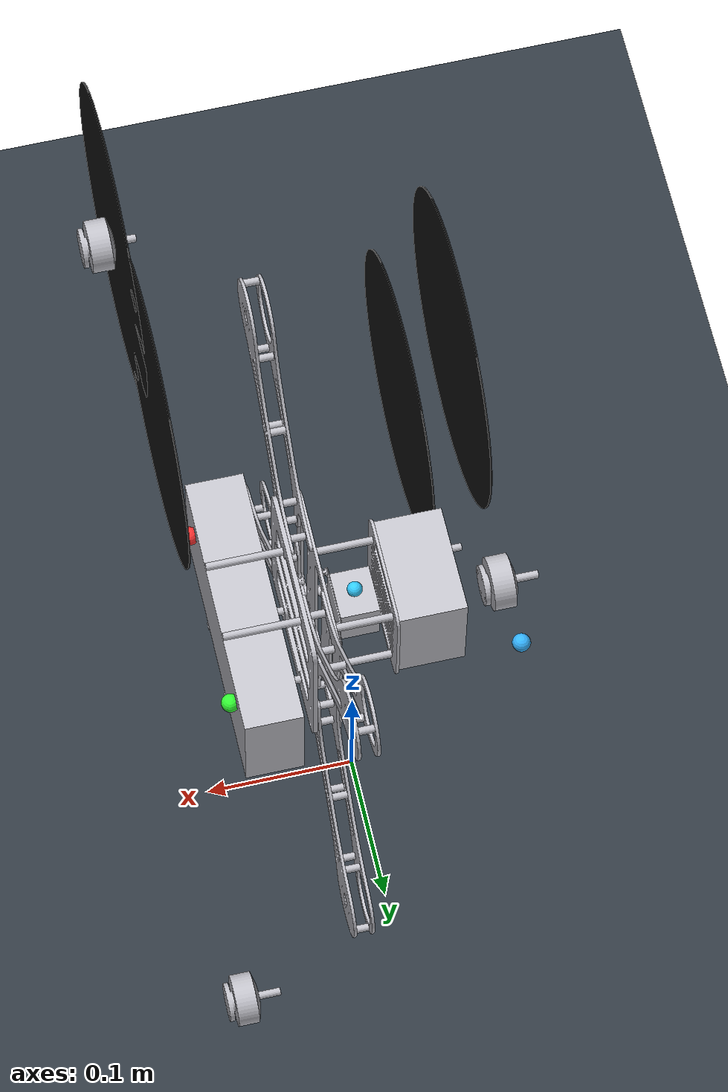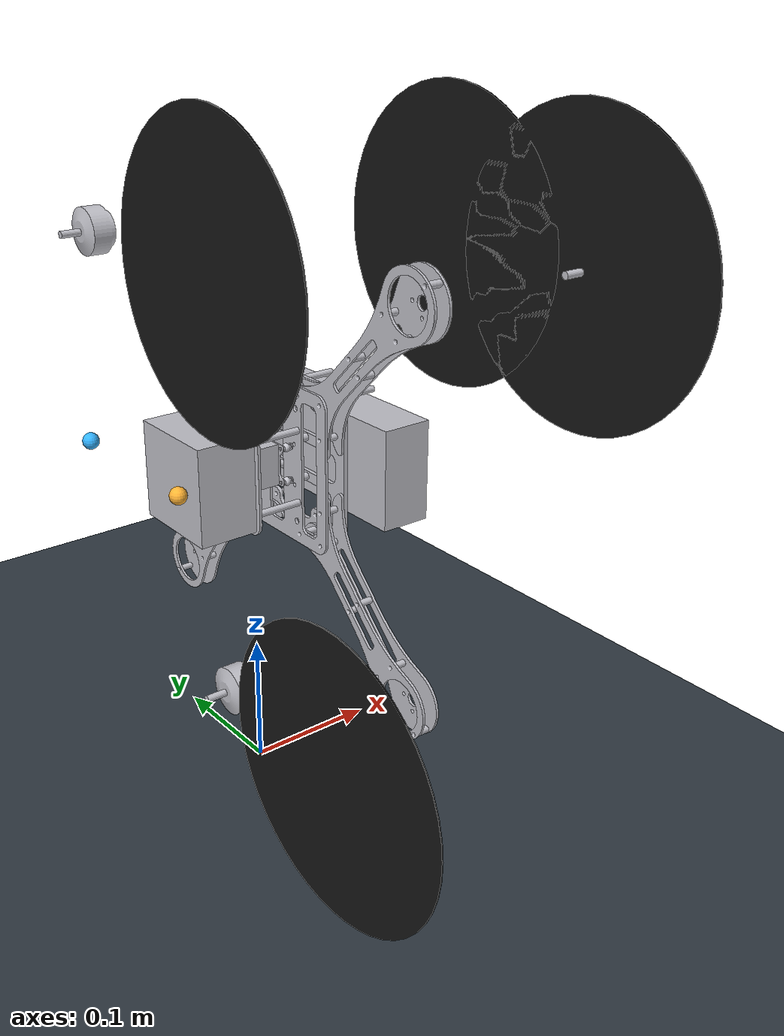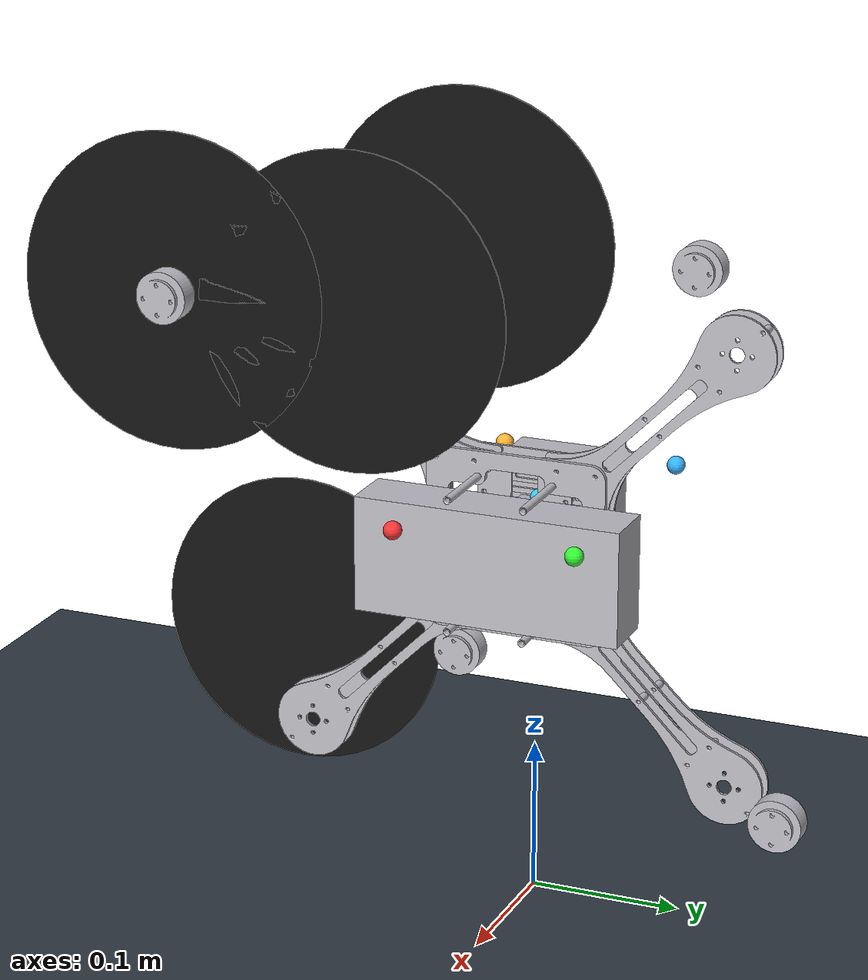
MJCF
<mujoco model="UAV_scene">
  <include file="UAV.xml"/>

  <statistic center="0 0 0.35" extent="2"/>

  <visual>
    <headlight ambient="0.25 0.25 0.25" diffuse="0.65 0.65 0.65" specular="0.2 0.2 0.2"/>
    <rgba haze="0.15 0.2 0.25 1"/>
    <quality shadowsize="4096"/>
  </visual>

  <asset>
    <texture name="grid" type="2d" builtin="checker" width="512" height="512"
      rgb1="0.24 0.28 0.32" rgb2="0.14 0.17 0.2"/>
    <material name="ground_mat" texture="grid" texrepeat="4 4" texuniform="true" reflectance="0.2"/>
  </asset>

  <worldbody>
    <light name="sun" directional="true" pos="0 0 4" dir="0 0 -1" diffuse="0.8 0.8 0.8" specular="0.15 0.15 0.15"/>
    <light name="fill" pos="1.5 -1.5 2.5" dir="-1 1 -2" diffuse="0.35 0.35 0.35"/>
    <camera name="overview" pos="1.6 -1.6 0.9" xyaxes="0.707 0.707 0 -0.235 0.235 0.943"/>

    <geom name="ground" type="plane" size="5 5 0.1" material="ground_mat" condim="3"
      contype="5" conaffinity="3"/>
  </worldbody>
</mujoco>

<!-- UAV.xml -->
<mujoco model="UAV">
  <compiler angle="degree" coordinate="local" meshdir="UAV" inertiafromgeom="auto"/>
  <option timestep="0.002" gravity="0 0 -9.81"/>

  <asset>
    <material name="uav_mat" rgba="0.75 0.75 0.78 1" specular="0.3" shininess="0.2"/>
    <material name="uav_prop_mat" rgba="0.08 0.08 0.08 1" specular="0.15" shininess="0.05"/>
    <mesh name="uav_11000mah_battery_1" file="UAV - 11000mAh_battery-1.STL" scale="1 1 1"/>
    <mesh name="uav_7nano_base_1" file="UAV - 7Nano_Base-1.STL" scale="1 1 1"/>
    <mesh name="uav_7nano_1" file="UAV - 7NANO-1.STL" scale="1 1 1"/>
    <mesh name="uav_cushion_pcb_1" file="UAV - Cushion_PCB-1.STL" scale="1 1 1"/>
    <mesh name="uav_cushion_pcb_2" file="UAV - Cushion_PCB-2.STL" scale="1 1 1"/>
    <mesh name="uav_cushion_pcb_3" file="UAV - Cushion_PCB-3.STL" scale="1 1 1"/>
    <mesh name="uav_cushion_pcb_4" file="UAV - Cushion_PCB-4.STL" scale="1 1 1"/>
    <mesh name="uav_d5l10alsupport_1" file="UAV - D5L10Alsupport-1.STL" scale="1 1 1"/>
    <mesh name="uav_d5l10alsupport_10" file="UAV - D5L10Alsupport-10.STL" scale="1 1 1"/>
    <mesh name="uav_d5l10alsupport_11" file="UAV - D5L10Alsupport-11.STL" scale="1 1 1"/>
    <mesh name="uav_d5l10alsupport_12" file="UAV - D5L10Alsupport-12.STL" scale="1 1 1"/>
    <mesh name="uav_d5l10alsupport_13" file="UAV - D5L10Alsupport-13.STL" scale="1 1 1"/>
    <mesh name="uav_d5l10alsupport_14" file="UAV - D5L10Alsupport-14.STL" scale="1 1 1"/>
    <mesh name="uav_d5l10alsupport_15" file="UAV - D5L10Alsupport-15.STL" scale="1 1 1"/>
    <mesh name="uav_d5l10alsupport_16" file="UAV - D5L10Alsupport-16.STL" scale="1 1 1"/>
    <mesh name="uav_d5l10alsupport_17" file="UAV - D5L10Alsupport-17.STL" scale="1 1 1"/>
    <mesh name="uav_d5l10alsupport_18" file="UAV - D5L10Alsupport-18.STL" scale="1 1 1"/>
    <mesh name="uav_d5l10alsupport_19" file="UAV - D5L10Alsupport-19.STL" scale="1 1 1"/>
    <mesh name="uav_d5l10alsupport_2" file="UAV - D5L10Alsupport-2.STL" scale="1 1 1"/>
    <mesh name="uav_d5l10alsupport_20" file="UAV - D5L10Alsupport-20.STL" scale="1 1 1"/>
    <mesh name="uav_d5l10alsupport_21" file="UAV - D5L10Alsupport-21.STL" scale="1 1 1"/>
    <mesh name="uav_d5l10alsupport_22" file="UAV - D5L10Alsupport-22.STL" scale="1 1 1"/>
    <mesh name="uav_d5l10alsupport_23" file="UAV - D5L10Alsupport-23.STL" scale="1 1 1"/>
    <mesh name="uav_d5l10alsupport_24" file="UAV - D5L10Alsupport-24.STL" scale="1 1 1"/>
    <mesh name="uav_d5l10alsupport_25" file="UAV - D5L10Alsupport-25.STL" scale="1 1 1"/>
    <mesh name="uav_d5l10alsupport_26" file="UAV - D5L10Alsupport-26.STL" scale="1 1 1"/>
    <mesh name="uav_d5l10alsupport_27" file="UAV - D5L10Alsupport-27.STL" scale="1 1 1"/>
    <mesh name="uav_d5l10alsupport_28" file="UAV - D5L10Alsupport-28.STL" scale="1 1 1"/>
    <mesh name="uav_d5l10alsupport_29" file="UAV - D5L10Alsupport-29.STL" scale="1 1 1"/>
    <mesh name="uav_d5l10alsupport_3" file="UAV - D5L10Alsupport-3.STL" scale="1 1 1"/>
    <mesh name="uav_d5l10alsupport_30" file="UAV - D5L10Alsupport-30.STL" scale="1 1 1"/>
    <mesh name="uav_d5l10alsupport_31" file="UAV - D5L10Alsupport-31.STL" scale="1 1 1"/>
    <mesh name="uav_d5l10alsupport_32" file="UAV - D5L10Alsupport-32.STL" scale="1 1 1"/>
    <mesh name="uav_d5l10alsupport_4" file="UAV - D5L10Alsupport-4.STL" scale="1 1 1"/>
    <mesh name="uav_d5l10alsupport_5" file="UAV - D5L10Alsupport-5.STL" scale="1 1 1"/>
    <mesh name="uav_d5l10alsupport_6" file="UAV - D5L10Alsupport-6.STL" scale="1 1 1"/>
    <mesh name="uav_d5l10alsupport_7" file="UAV - D5L10Alsupport-7.STL" scale="1 1 1"/>
    <mesh name="uav_d5l10alsupport_8" file="UAV - D5L10Alsupport-8.STL" scale="1 1 1"/>
    <mesh name="uav_d5l10alsupport_9" file="UAV - D5L10Alsupport-9.STL" scale="1 1 1"/>
    <mesh name="uav_d5l40alsupport_1" file="UAV - D5L40Alsupport-1.STL" scale="1 1 1"/>
    <mesh name="uav_d5l40alsupport_2" file="UAV - D5L40Alsupport-2.STL" scale="1 1 1"/>
    <mesh name="uav_d5l40alsupport_3" file="UAV - D5L40Alsupport-3.STL" scale="1 1 1"/>
    <mesh name="uav_d5l40alsupport_4" file="UAV - D5L40Alsupport-4.STL" scale="1 1 1"/>
    <mesh name="uav_d5l50alsupport_1" file="UAV - D5L50Alsupport-1.STL" scale="1 1 1"/>
    <mesh name="uav_d5l50alsupport_2" file="UAV - D5L50Alsupport-2.STL" scale="1 1 1"/>
    <mesh name="uav_d5l50alsupport_3" file="UAV - D5L50Alsupport-3.STL" scale="1 1 1"/>
    <mesh name="uav_d5l50alsupport_4" file="UAV - D5L50Alsupport-4.STL" scale="1 1 1"/>
    <mesh name="uav_motor_2807_1300kv_1" file="UAV - Motor_2807_1300KV-1.STL" scale="1 1 1"/>
    <mesh name="uav_motor_2807_1300kv_2" file="UAV - Motor_2807_1300KV-2.STL" scale="1 1 1"/>
    <mesh name="uav_motor_2807_1300kv_3" file="UAV - Motor_2807_1300KV-3.STL" scale="1 1 1"/>
    <mesh name="uav_motor_2807_1300kv_4" file="UAV - Motor_2807_1300KV-4.STL" scale="1 1 1"/>
    <mesh name="uav_n100pc_1" file="UAV - N100PC-1.STL" scale="1 1 1"/>
    <mesh name="uav_pad_7nano_1" file="UAV - PAD_7NANO-1.STL" scale="1 1 1"/>
    <mesh name="uav_pad_7nano_2" file="UAV - PAD_7NANO-2.STL" scale="1 1 1"/>
    <mesh name="uav_pad_7nano_3" file="UAV - PAD_7NANO-3.STL" scale="1 1 1"/>
    <mesh name="uav_pad_7nano_4" file="UAV - PAD_7NANO-4.STL" scale="1 1 1"/>
    <mesh name="uav_pc_base_1" file="UAV - PC_Base-1.STL" scale="1 1 1"/>
    <mesh name="uav_prop_1" file="UAV - prop-1.STL" scale="1 1 1"/>
    <mesh name="uav_prop_2" file="UAV - prop-2.STL" scale="1 1 1"/>
    <mesh name="uav_prop_3" file="UAV - prop-3.STL" scale="1 1 1"/>
    <mesh name="uav_prop_4" file="UAV - prop-4.STL" scale="1 1 1"/>
    <mesh name="uav_uav_lower_arm_1" file="UAV - UAV_Lower_Arm-1.STL" scale="1 1 1"/>
    <mesh name="uav_uav_lower_arm_2" file="UAV - UAV_Lower_Arm-2.STL" scale="1 1 1"/>
    <mesh name="uav_uav_lower_arm_3" file="UAV - UAV_Lower_Arm-3.STL" scale="1 1 1"/>
    <mesh name="uav_uav_lower_arm_4" file="UAV - UAV_Lower_Arm-4.STL" scale="1 1 1"/>
    <mesh name="uav_uav_lower_board_1" file="UAV - UAV_Lower_board-1.STL" scale="1 1 1"/>
    <mesh name="uav_uav_upper_arm_1" file="UAV - UAV_Upper_Arm-1.STL" scale="1 1 1"/>
    <mesh name="uav_uav_upper_arm_2" file="UAV - UAV_Upper_Arm-2.STL" scale="1 1 1"/>
    <mesh name="uav_uav_upper_arm_3" file="UAV - UAV_Upper_Arm-3.STL" scale="1 1 1"/>
    <mesh name="uav_uav_upper_arm_4" file="UAV - UAV_Upper_Arm-4.STL" scale="1 1 1"/>
    <mesh name="uav_uav_upper_board_1" file="UAV - UAV_Upper_board-1.STL" scale="1 1 1"/>
  </asset>

  <default>
    <!-- Finest-grained setup: one fixed child body per CAD part so MuJoCo can -->
    <!-- expose per-part inertias in the GUI while the whole UAV still moves as -->
    <!-- a single rigid subtree through the root freejoint. -->
    <geom type="mesh" density="1362.6680182945286" material="uav_mat" friction="0.8 0.1 0.1"
      solref="0.005 1" solimp="0.9 0.95 0.001"/>
    <default class="frame">
      <geom group="1"/>
    </default>
    <default class="payload">
      <geom group="2"/>
    </default>
    <default class="prop">
      <!-- Props collide with the ground, but not with the rest of the UAV. -->
      <geom group="1" contype="2" conaffinity="4" material="uav_prop_mat"/>
    </default>
  </default>

  <worldbody>
    <body name="uav" pos="0 0 0.25">
      <freejoint/>
      <site name="imu" pos="0 0 0.02" size="0.005" rgba="0.2 0.8 1 1"/>
      <!-- PX4 Quad X rotor order: 1=front-left, 2=back-right, 3=front-right, 4=back-left -->
      <site name="motor_1_site" pos="0.094 0.060 0.020" size="0.006" rgba="0.2 1 0.2 1"/>
      <site name="motor_2_site" pos="-0.094 -0.060 0.020" size="0.006" rgba="1 0.7 0.2 1"/>
      <site name="motor_3_site" pos="0.094 -0.060 0.020" size="0.006" rgba="1 0.2 0.2 1"/>
      <site name="motor_4_site" pos="-0.094 0.060 0.020" size="0.006" rgba="0.2 0.7 1 1"/>
      <body name="cad_frame" euler="0 -90 0">
        <body name="part_uav_11000mah_battery_1">
          <geom class="payload" name="uav_11000mah_battery_1" mesh="uav_11000mah_battery_1"/>
        </body>
        <body name="part_uav_7nano_base_1">
          <geom class="payload" name="uav_7nano_base_1" mesh="uav_7nano_base_1"/>
        </body>
        <body name="part_uav_7nano_1">
          <geom class="payload" name="uav_7nano_1" mesh="uav_7nano_1"/>
        </body>
        <body name="part_uav_cushion_pcb_1">
          <geom class="payload" name="uav_cushion_pcb_1" mesh="uav_cushion_pcb_1"/>
        </body>
        <body name="part_uav_cushion_pcb_2">
          <geom class="payload" name="uav_cushion_pcb_2" mesh="uav_cushion_pcb_2"/>
        </body>
        <body name="part_uav_cushion_pcb_3">
          <geom class="payload" name="uav_cushion_pcb_3" mesh="uav_cushion_pcb_3"/>
        </body>
        <body name="part_uav_cushion_pcb_4">
          <geom class="payload" name="uav_cushion_pcb_4" mesh="uav_cushion_pcb_4"/>
        </body>
        <body name="part_uav_d5l10alsupport_1">
          <geom class="frame" name="uav_d5l10alsupport_1" mesh="uav_d5l10alsupport_1"/>
        </body>
        <body name="part_uav_d5l10alsupport_10">
          <geom class="frame" name="uav_d5l10alsupport_10" mesh="uav_d5l10alsupport_10"/>
        </body>
        <body name="part_uav_d5l10alsupport_11">
          <geom class="frame" name="uav_d5l10alsupport_11" mesh="uav_d5l10alsupport_11"/>
        </body>
        <body name="part_uav_d5l10alsupport_12">
          <geom class="frame" name="uav_d5l10alsupport_12" mesh="uav_d5l10alsupport_12"/>
        </body>
        <body name="part_uav_d5l10alsupport_13">
          <geom class="frame" name="uav_d5l10alsupport_13" mesh="uav_d5l10alsupport_13"/>
        </body>
        <body name="part_uav_d5l10alsupport_14">
          <geom class="frame" name="uav_d5l10alsupport_14" mesh="uav_d5l10alsupport_14"/>
        </body>
        <body name="part_uav_d5l10alsupport_15">
          <geom class="frame" name="uav_d5l10alsupport_15" mesh="uav_d5l10alsupport_15"/>
        </body>
        <body name="part_uav_d5l10alsupport_16">
          <geom class="frame" name="uav_d5l10alsupport_16" mesh="uav_d5l10alsupport_16"/>
        </body>
        <body name="part_uav_d5l10alsupport_17">
          <geom class="frame" name="uav_d5l10alsupport_17" mesh="uav_d5l10alsupport_17"/>
        </body>
        <body name="part_uav_d5l10alsupport_18">
          <geom class="frame" name="uav_d5l10alsupport_18" mesh="uav_d5l10alsupport_18"/>
        </body>
        <body name="part_uav_d5l10alsupport_19">
          <geom class="frame" name="uav_d5l10alsupport_19" mesh="uav_d5l10alsupport_19"/>
        </body>
        <body name="part_uav_d5l10alsupport_2">
          <geom class="frame" name="uav_d5l10alsupport_2" mesh="uav_d5l10alsupport_2"/>
        </body>
        <body name="part_uav_d5l10alsupport_20">
          <geom class="frame" name="uav_d5l10alsupport_20" mesh="uav_d5l10alsupport_20"/>
        </body>
        <body name="part_uav_d5l10alsupport_21">
          <geom class="frame" name="uav_d5l10alsupport_21" mesh="uav_d5l10alsupport_21"/>
        </body>
        <body name="part_uav_d5l10alsupport_22">
          <geom class="frame" name="uav_d5l10alsupport_22" mesh="uav_d5l10alsupport_22"/>
        </body>
        <body name="part_uav_d5l10alsupport_23">
          <geom class="frame" name="uav_d5l10alsupport_23" mesh="uav_d5l10alsupport_23"/>
        </body>
        <body name="part_uav_d5l10alsupport_24">
          <geom class="frame" name="uav_d5l10alsupport_24" mesh="uav_d5l10alsupport_24"/>
        </body>
        <body name="part_uav_d5l10alsupport_25">
          <geom class="frame" name="uav_d5l10alsupport_25" mesh="uav_d5l10alsupport_25"/>
        </body>
        <body name="part_uav_d5l10alsupport_26">
          <geom class="frame" name="uav_d5l10alsupport_26" mesh="uav_d5l10alsupport_26"/>
        </body>
        <body name="part_uav_d5l10alsupport_27">
          <geom class="frame" name="uav_d5l10alsupport_27" mesh="uav_d5l10alsupport_27"/>
        </body>
        <body name="part_uav_d5l10alsupport_28">
          <geom class="frame" name="uav_d5l10alsupport_28" mesh="uav_d5l10alsupport_28"/>
        </body>
        <body name="part_uav_d5l10alsupport_29">
          <geom class="frame" name="uav_d5l10alsupport_29" mesh="uav_d5l10alsupport_29"/>
        </body>
        <body name="part_uav_d5l10alsupport_3">
          <geom class="frame" name="uav_d5l10alsupport_3" mesh="uav_d5l10alsupport_3"/>
        </body>
        <body name="part_uav_d5l10alsupport_30">
          <geom class="frame" name="uav_d5l10alsupport_30" mesh="uav_d5l10alsupport_30"/>
        </body>
        <body name="part_uav_d5l10alsupport_31">
          <geom class="frame" name="uav_d5l10alsupport_31" mesh="uav_d5l10alsupport_31"/>
        </body>
        <body name="part_uav_d5l10alsupport_32">
          <geom class="frame" name="uav_d5l10alsupport_32" mesh="uav_d5l10alsupport_32"/>
        </body>
        <body name="part_uav_d5l10alsupport_4">
          <geom class="frame" name="uav_d5l10alsupport_4" mesh="uav_d5l10alsupport_4"/>
        </body>
        <body name="part_uav_d5l10alsupport_5">
          <geom class="frame" name="uav_d5l10alsupport_5" mesh="uav_d5l10alsupport_5"/>
        </body>
        <body name="part_uav_d5l10alsupport_6">
          <geom class="frame" name="uav_d5l10alsupport_6" mesh="uav_d5l10alsupport_6"/>
        </body>
        <body name="part_uav_d5l10alsupport_7">
          <geom class="frame" name="uav_d5l10alsupport_7" mesh="uav_d5l10alsupport_7"/>
        </body>
        <body name="part_uav_d5l10alsupport_8">
          <geom class="frame" name="uav_d5l10alsupport_8" mesh="uav_d5l10alsupport_8"/>
        </body>
        <body name="part_uav_d5l10alsupport_9">
          <geom class="frame" name="uav_d5l10alsupport_9" mesh="uav_d5l10alsupport_9"/>
        </body>
        <body name="part_uav_d5l40alsupport_1">
          <geom class="frame" name="uav_d5l40alsupport_1" mesh="uav_d5l40alsupport_1"/>
        </body>
        <body name="part_uav_d5l40alsupport_2">
          <geom class="frame" name="uav_d5l40alsupport_2" mesh="uav_d5l40alsupport_2"/>
        </body>
        <body name="part_uav_d5l40alsupport_3">
          <geom class="frame" name="uav_d5l40alsupport_3" mesh="uav_d5l40alsupport_3"/>
        </body>
        <body name="part_uav_d5l40alsupport_4">
          <geom class="frame" name="uav_d5l40alsupport_4" mesh="uav_d5l40alsupport_4"/>
        </body>
        <body name="part_uav_d5l50alsupport_1">
          <geom class="frame" name="uav_d5l50alsupport_1" mesh="uav_d5l50alsupport_1"/>
        </body>
        <body name="part_uav_d5l50alsupport_2">
          <geom class="frame" name="uav_d5l50alsupport_2" mesh="uav_d5l50alsupport_2"/>
        </body>
        <body name="part_uav_d5l50alsupport_3">
          <geom class="frame" name="uav_d5l50alsupport_3" mesh="uav_d5l50alsupport_3"/>
        </body>
        <body name="part_uav_d5l50alsupport_4">
          <geom class="frame" name="uav_d5l50alsupport_4" mesh="uav_d5l50alsupport_4"/>
        </body>
        <body name="part_uav_n100pc_1">
          <geom class="payload" name="uav_n100pc_1" mesh="uav_n100pc_1"/>
        </body>
        <body name="part_uav_pad_7nano_1">
          <geom class="payload" name="uav_pad_7nano_1" mesh="uav_pad_7nano_1"/>
        </body>
        <body name="part_uav_pad_7nano_2">
          <geom class="payload" name="uav_pad_7nano_2" mesh="uav_pad_7nano_2"/>
        </body>
        <body name="part_uav_pad_7nano_3">
          <geom class="payload" name="uav_pad_7nano_3" mesh="uav_pad_7nano_3"/>
        </body>
        <body name="part_uav_pad_7nano_4">
          <geom class="payload" name="uav_pad_7nano_4" mesh="uav_pad_7nano_4"/>
        </body>
        <body name="part_uav_pc_base_1">
          <geom class="payload" name="uav_pc_base_1" mesh="uav_pc_base_1"/>
        </body>
        <body name="part_uav_uav_lower_arm_1">
          <geom class="frame" name="uav_uav_lower_arm_1" mesh="uav_uav_lower_arm_1"/>
        </body>
        <body name="part_uav_uav_lower_arm_2">
          <geom class="frame" name="uav_uav_lower_arm_2" mesh="uav_uav_lower_arm_2"/>
        </body>
        <body name="part_uav_uav_lower_arm_3">
          <geom class="frame" name="uav_uav_lower_arm_3" mesh="uav_uav_lower_arm_3"/>
        </body>
        <body name="part_uav_uav_lower_arm_4">
          <geom class="frame" name="uav_uav_lower_arm_4" mesh="uav_uav_lower_arm_4"/>
        </body>
        <body name="part_uav_uav_lower_board_1">
          <geom class="frame" name="uav_uav_lower_board_1" mesh="uav_uav_lower_board_1"/>
        </body>
        <body name="part_uav_uav_upper_arm_1">
          <geom class="frame" name="uav_uav_upper_arm_1" mesh="uav_uav_upper_arm_1"/>
        </body>
        <body name="part_uav_uav_upper_arm_2">
          <geom class="frame" name="uav_uav_upper_arm_2" mesh="uav_uav_upper_arm_2"/>
        </body>
        <body name="part_uav_uav_upper_arm_3">
          <geom class="frame" name="uav_uav_upper_arm_3" mesh="uav_uav_upper_arm_3"/>
        </body>
        <body name="part_uav_uav_upper_arm_4">
          <geom class="frame" name="uav_uav_upper_arm_4" mesh="uav_uav_upper_arm_4"/>
        </body>
        <body name="part_uav_uav_upper_board_1">
          <geom class="frame" name="uav_uav_upper_board_1" mesh="uav_uav_upper_board_1"/>
        </body>
      </body>
      <body name="px4_rotor_1_front_left" pos="0.094 0.060 0.020" euler="0 -90 0">
        <geom class="frame" name="uav_motor_2807_1300kv_1" mesh="uav_motor_2807_1300kv_1"/>
        <geom class="prop" name="uav_prop_1" mesh="uav_prop_1"/>
      </body>
      <body name="px4_rotor_2_back_right" pos="-0.094 -0.060 0.020" euler="0 -90 0">
        <geom class="frame" name="uav_motor_2807_1300kv_2" mesh="uav_motor_2807_1300kv_2"/>
        <geom class="prop" name="uav_prop_2" mesh="uav_prop_2"/>
      </body>
      <body name="px4_rotor_3_front_right" pos="0.094 -0.060 0.020" euler="0 -90 0">
        <geom class="frame" name="uav_motor_2807_1300kv_3" mesh="uav_motor_2807_1300kv_3"/>
        <geom class="prop" name="uav_prop_3" mesh="uav_prop_3"/>
      </body>
      <body name="px4_rotor_4_back_left" pos="-0.094 0.060 0.020" euler="0 -90 0">
        <geom class="frame" name="uav_motor_2807_1300kv_4" mesh="uav_motor_2807_1300kv_4"/>
        <geom class="prop" name="uav_prop_4" mesh="uav_prop_4"/>
      </body>
    </body>
  </worldbody>

  <sensor>
    <gyro name="body_gyro" site="imu"/>
    <accelerometer name="body_linacc" site="imu"/>
    <magnetometer name="body_mag" site="imu"/>
    <framequat name="body_quat" objtype="site" objname="imu"/>
    <framelinvel name="body_linvel" objtype="site" objname="imu"/>
    <framelinacc name="body_frameacc" objtype="site" objname="imu"/>
  </sensor>

  <actuator>
    <motor name="motor_1" site="motor_1_site" gear="0 0 1 0 0 0.05" ctrlrange="0 12" ctrllimited="true"/>
    <motor name="motor_2" site="motor_2_site" gear="0 0 1 0 0 0.05" ctrlrange="0 12" ctrllimited="true"/>
    <motor name="motor_3" site="motor_3_site" gear="0 0 1 0 0 -0.05" ctrlrange="0 12" ctrllimited="true"/>
    <motor name="motor_4" site="motor_4_site" gear="0 0 1 0 0 -0.05" ctrlrange="0 12" ctrllimited="true"/>
  </actuator>

  <keyframe>
    <key name="hover" qpos="0 0 0.25 1 0 0 0" ctrl="4.12 4.12 4.12 4.12"/>
  </keyframe>
</mujoco>
